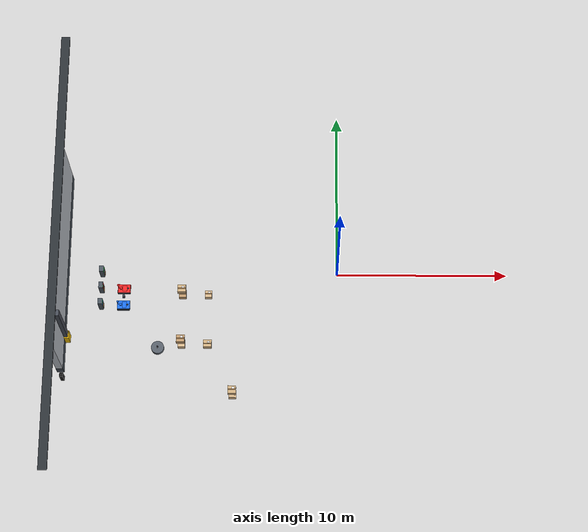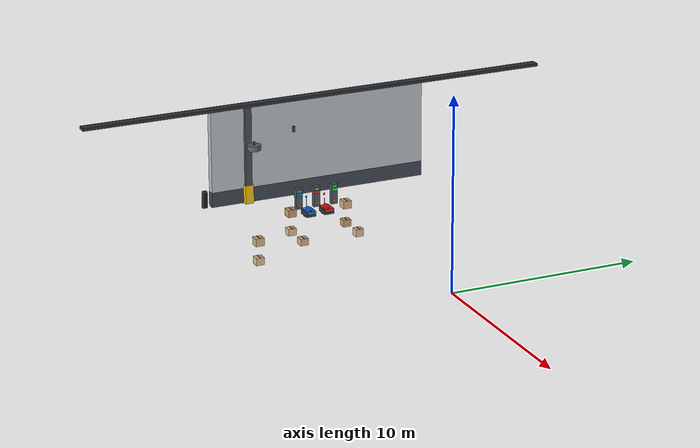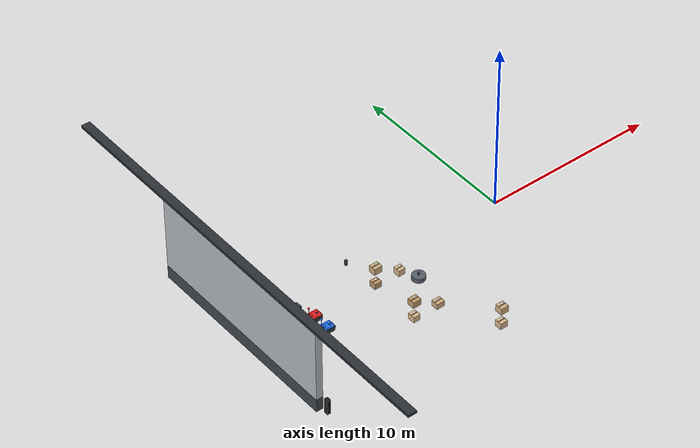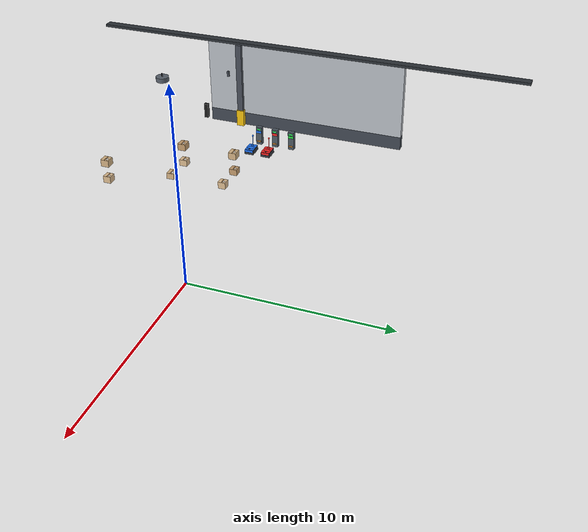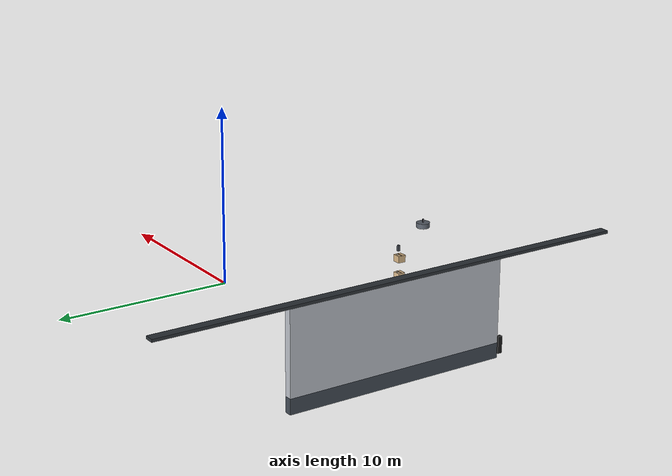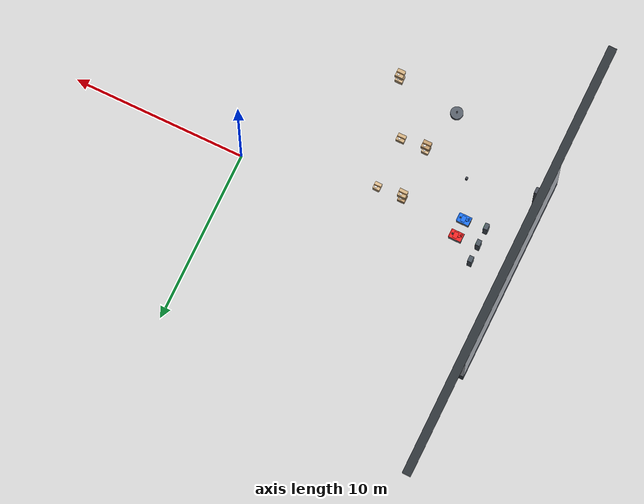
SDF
<sdf version="1.8">
 <world name="warehouse_3d">
  <model name="warehouse_architecture">
   <static>true</static>
   <link name="wall_west_mid_base">
    <pose>-16.0000 0.0000 0.4000 0.0000 0.0000 0.0000</pose>
    <collision name="wall_west_mid_base_col">
     <geometry><box><size>0.4000 12.0000 0.8000</size></box></geometry>
    </collision>
    <visual name="wall_west_mid_base_vis">
     <geometry><box><size>0.4000 12.0000 0.8000</size></box></geometry>
     <material>
      <ambient>0.163 0.182 0.208 1.00</ambient>
      <diffuse>0.250 0.280 0.320 1.00</diffuse>
      <specular>0.15 0.15 0.15 1.0</specular>
     </material>
    </visual>
   </link>
   <link name="wall_west_mid_upper">
    <pose>-16.0000 0.0000 3.0000 0.0000 0.0000 0.0000</pose>
    <collision name="wall_west_mid_upper_col">
     <geometry><box><size>0.4000 12.0000 4.4000</size></box></geometry>
    </collision>
    <visual name="wall_west_mid_upper_vis">
     <geometry><box><size>0.4000 12.0000 4.4000</size></box></geometry>
     <material>
      <ambient>0.468 0.481 0.501 1.00</ambient>
      <diffuse>0.720 0.740 0.770 1.00</diffuse>
      <specular>0.15 0.15 0.15 1.0</specular>
     </material>
    </visual>
   </link>
   <link name="wall_west_coping">
    <pose>-16.0000 0.0000 5.2500 0.0000 0.0000 0.0000</pose>
    <collision name="wall_west_coping_col">
     <geometry><box><size>0.5000 25.8000 0.1500</size></box></geometry>
    </collision>
    <visual name="wall_west_coping_vis">
     <geometry><box><size>0.5000 25.8000 0.1500</size></box></geometry>
     <material>
      <ambient>0.117 0.130 0.143 1.00</ambient>
      <diffuse>0.180 0.200 0.220 1.00</diffuse>
      <specular>0.15 0.15 0.15 1.0</specular>
     </material>
    </visual>
   </link>
   <link name="dock_bumper_out_2">
    <pose>-15.8500 -6.4000 0.5000 0.0000 0.0000 0.0000</pose>
    <collision name="dock_bumper_out_2_col">
     <geometry><box><size>0.2000 0.2500 0.9000</size></box></geometry>
    </collision>
    <visual name="dock_bumper_out_2_vis">
     <geometry><box><size>0.2000 0.2500 0.9000</size></box></geometry>
     <material>
      <ambient>0.065 0.065 0.065 1.00</ambient>
      <diffuse>0.100 0.100 0.100 1.00</diffuse>
      <specular>0.15 0.15 0.15 1.0</specular>
     </material>
    </visual>
   </link>
   <link name="col_1_base">
    <pose>-15.7500 -4.0000 0.5000 0.0000 0.0000 0.0000</pose>
    <collision name="col_1_base_col"><geometry><box><size>0.4500 0.4500 1.0000</size></box></geometry></collision>
    <visual name="col_1_base_vis">
     <geometry><box><size>0.4500 0.4500 1.0000</size></box></geometry>
     <material>
      <ambient>0.617 0.488 0.033 1.00</ambient>
      <diffuse>0.950 0.750 0.050 1.00</diffuse>
      <specular>0.15 0.15 0.15 1.0</specular>
     </material>
    </visual>
   </link>
   <link name="col_1_stem">
    <pose>-15.7500 -4.0000 3.1000 0.0000 0.0000 0.0000</pose>
    <collision name="col_1_stem_col"><geometry><box><size>0.3500 0.3500 4.2000</size></box></geometry></collision>
    <visual name="col_1_stem_vis">
     <geometry><box><size>0.3500 0.3500 4.2000</size></box></geometry>
     <material>
      <ambient>0.182 0.195 0.221 1.00</ambient>
      <diffuse>0.280 0.300 0.340 1.00</diffuse>
      <specular>0.15 0.15 0.15 1.0</specular>
     </material>
    </visual>
   </link>
   <link name="truss_web_1_0">
    <pose>-12.0000 -3.0000 5.0500 0.0000 0.0000 0.0000</pose>
    <visual name="truss_web_1_0_vis">
     <geometry><box><size>0.1200 0.1200 0.3000</size></box></geometry>
     <material>
      <ambient>0.182 0.195 0.221 1.00</ambient>
      <diffuse>0.280 0.300 0.340 1.00</diffuse>
      <specular>0.15 0.15 0.15 1.0</specular>
     </material>
    </visual>
   </link>
   <link name="fixture_bell_0">
    <pose>-10.0000 -6.0000 5.1500 0.0000 0.0000 0.0000</pose>
    <visual name="fixture_bell_0_vis">
     <geometry><cylinder><radius>0.3500</radius><length>0.2500</length></cylinder></geometry>
     <material>
      <ambient>0.227 0.247 0.273 1.00</ambient>
      <diffuse>0.350 0.380 0.420 1.00</diffuse>
      <specular>0.2 0.2 0.2 1.0</specular>
     </material>
    </visual>
   </link>
   <link name="fixture_stem_0">
    <pose>-10.0000 -6.0000 5.3500 0.0000 0.0000 0.0000</pose>
    <visual name="fixture_stem_0_vis">
     <geometry><cylinder><radius>0.0400</radius><length>0.2000</length></cylinder></geometry>
     <material>
      <ambient>0.098 0.098 0.117 1.00</ambient>
      <diffuse>0.150 0.150 0.180 1.00</diffuse>
      <specular>0.2 0.2 0.2 1.0</specular>
     </material>
    </visual>
   </link>
   <link name="fixture_lens_0">
    <pose>-10.0000 -6.0000 5.0200 0.0000 0.0000 0.0000</pose>
    <visual name="fixture_lens_0_vis">
     <geometry><cylinder><radius>0.3200</radius><length>0.0400</length></cylinder></geometry>
     <material>
      <ambient>0.617 0.637 0.650 1.00</ambient>
      <diffuse>0.950 0.980 1.000 1.00</diffuse>
      <specular>0.2 0.2 0.2 1.0</specular>
      <emissive>0.850 0.880 0.950 1.0</emissive>
     </material>
    </visual>
   </link>
  </model>
  <model name="package_P003">
   <static>true</static>
   <pose>-6.00 -7.50 0.82 0 0 0</pose>
   <link name="box_link">
    <collision name="box_col"><geometry><box><size>0.43 0.42 0.38</size></box></geometry></collision>
    <visual name="box_vis">
     <geometry><box><size>0.43 0.42 0.38</size></box></geometry>
     <material>
      <ambient>0.60 0.51 0.39 1.0</ambient>
      <diffuse>0.86 0.73 0.56 1.0</diffuse>
      <specular>0.08 0.08 0.08 1.0</specular>
     </material>
    </visual>
    <visual name="top_tape">
     <pose>0 0 0.1910 0 0 0</pose>
     <geometry><box><size>0.432 0.05 0.002</size></box></geometry>
     <material><ambient>0.48 0.35 0.20 1.0</ambient><diffuse>0.55 0.40 0.24 1.0</diffuse></material>
    </visual>
    <visual name="shipping_label">
     <pose>0.065 0.084 0.1920 0 0 0</pose>
     <geometry><box><size>0.14 0.10 0.002</size></box></geometry>
     <material><ambient>0.92 0.92 0.92 1.0</ambient><diffuse>0.98 0.98 0.98 1.0</diffuse></material>
    </visual>
   </link>
  </model>
  <model name="package_P007">
   <static>true</static>
   <pose>-6.00 -7.50 1.82 0 0 0</pose>
   <link name="box_link">
    <collision name="box_col"><geometry><box><size>0.45 0.45 0.39</size></box></geometry></collision>
    <visual name="box_vis">
     <geometry><box><size>0.45 0.45 0.39</size></box></geometry>
     <material>
      <ambient>0.57 0.48 0.36 1.0</ambient>
      <diffuse>0.82 0.69 0.51 1.0</diffuse>
      <specular>0.08 0.08 0.08 1.0</specular>
     </material>
    </visual>
    <visual name="top_tape">
     <pose>0 0 0.1960 0 0 0</pose>
     <geometry><box><size>0.452 0.05 0.002</size></box></geometry>
     <material><ambient>0.48 0.35 0.20 1.0</ambient><diffuse>0.55 0.40 0.24 1.0</diffuse></material>
    </visual>
    <visual name="shipping_label">
     <pose>0.068 0.090 0.1970 0 0 0</pose>
     <geometry><box><size>0.14 0.10 0.002</size></box></geometry>
     <material><ambient>0.92 0.92 0.92 1.0</ambient><diffuse>0.98 0.98 0.98 1.0</diffuse></material>
    </visual>
   </link>
  </model>
  <model name="package_P009">
   <static>true</static>
   <pose>-9.00 -4.50 0.82 0 0 0</pose>
   <link name="box_link">
    <collision name="box_col"><geometry><box><size>0.40 0.43 0.36</size></box></geometry></collision>
    <visual name="box_vis">
     <geometry><box><size>0.40 0.43 0.36</size></box></geometry>
     <material>
      <ambient>0.60 0.51 0.39 1.0</ambient>
      <diffuse>0.86 0.73 0.56 1.0</diffuse>
      <specular>0.08 0.08 0.08 1.0</specular>
     </material>
    </visual>
    <visual name="top_tape">
     <pose>0 0 0.1810 0 0 0</pose>
     <geometry><box><size>0.402 0.05 0.002</size></box></geometry>
     <material><ambient>0.48 0.35 0.20 1.0</ambient><diffuse>0.55 0.40 0.24 1.0</diffuse></material>
    </visual>
    <visual name="shipping_label">
     <pose>0.060 0.086 0.1820 0 0 0</pose>
     <geometry><box><size>0.14 0.10 0.002</size></box></geometry>
     <material><ambient>0.92 0.92 0.92 1.0</ambient><diffuse>0.98 0.98 0.98 1.0</diffuse></material>
    </visual>
   </link>
  </model>
  <model name="package_P010">
   <static>true</static>
   <pose>-7.50 -4.50 0.82 0 0 0</pose>
   <link name="box_link">
    <collision name="box_col"><geometry><box><size>0.47 0.42 0.34</size></box></geometry></collision>
    <visual name="box_vis">
     <geometry><box><size>0.47 0.42 0.34</size></box></geometry>
     <material>
      <ambient>0.57 0.48 0.36 1.0</ambient>
      <diffuse>0.82 0.69 0.51 1.0</diffuse>
      <specular>0.08 0.08 0.08 1.0</specular>
     </material>
    </visual>
    <visual name="top_tape">
     <pose>0 0 0.1710 0 0 0</pose>
     <geometry><box><size>0.472 0.05 0.002</size></box></geometry>
     <material><ambient>0.48 0.35 0.20 1.0</ambient><diffuse>0.55 0.40 0.24 1.0</diffuse></material>
    </visual>
    <visual name="shipping_label">
     <pose>0.070 0.084 0.1720 0 0 0</pose>
     <geometry><box><size>0.14 0.10 0.002</size></box></geometry>
     <material><ambient>0.92 0.92 0.92 1.0</ambient><diffuse>0.98 0.98 0.98 1.0</diffuse></material>
    </visual>
   </link>
  </model>
  <model name="package_P014">
   <static>true</static>
   <pose>-9.00 -4.50 1.82 0 0 0</pose>
   <link name="box_link">
    <collision name="box_col"><geometry><box><size>0.48 0.44 0.38</size></box></geometry></collision>
    <visual name="box_vis">
     <geometry><box><size>0.48 0.44 0.38</size></box></geometry>
     <material>
      <ambient>0.53 0.43 0.30 1.0</ambient>
      <diffuse>0.76 0.61 0.43 1.0</diffuse>
      <specular>0.08 0.08 0.08 1.0</specular>
     </material>
    </visual>
    <visual name="top_tape">
     <pose>0 0 0.1910 0 0 0</pose>
     <geometry><box><size>0.482 0.05 0.002</size></box></geometry>
     <material><ambient>0.48 0.35 0.20 1.0</ambient><diffuse>0.55 0.40 0.24 1.0</diffuse></material>
    </visual>
    <visual name="shipping_label">
     <pose>0.072 0.088 0.1920 0 0 0</pose>
     <geometry><box><size>0.14 0.10 0.002</size></box></geometry>
     <material><ambient>0.92 0.92 0.92 1.0</ambient><diffuse>0.98 0.98 0.98 1.0</diffuse></material>
    </visual>
   </link>
  </model>
  <model name="package_P017">
   <static>true</static>
   <pose>-9.00 -1.50 0.82 0 0 0</pose>
   <link name="box_link">
    <collision name="box_col"><geometry><box><size>0.42 0.42 0.35</size></box></geometry></collision>
    <visual name="box_vis">
     <geometry><box><size>0.42 0.42 0.35</size></box></geometry>
     <material>
      <ambient>0.53 0.43 0.30 1.0</ambient>
      <diffuse>0.76 0.61 0.43 1.0</diffuse>
      <specular>0.08 0.08 0.08 1.0</specular>
     </material>
    </visual>
    <visual name="top_tape">
     <pose>0 0 0.1760 0 0 0</pose>
     <geometry><box><size>0.422 0.05 0.002</size></box></geometry>
     <material><ambient>0.48 0.35 0.20 1.0</ambient><diffuse>0.55 0.40 0.24 1.0</diffuse></material>
    </visual>
    <visual name="shipping_label">
     <pose>0.063 0.084 0.1770 0 0 0</pose>
     <geometry><box><size>0.14 0.10 0.002</size></box></geometry>
     <material><ambient>0.92 0.92 0.92 1.0</ambient><diffuse>0.98 0.98 0.98 1.0</diffuse></material>
    </visual>
   </link>
  </model>
  <model name="package_P018">
   <static>true</static>
   <pose>-7.50 -1.50 0.82 0 0 0</pose>
   <link name="box_link">
    <collision name="box_col"><geometry><box><size>0.40 0.41 0.38</size></box></geometry></collision>
    <visual name="box_vis">
     <geometry><box><size>0.40 0.41 0.38</size></box></geometry>
     <material>
      <ambient>0.60 0.51 0.39 1.0</ambient>
      <diffuse>0.86 0.73 0.56 1.0</diffuse>
      <specular>0.08 0.08 0.08 1.0</specular>
     </material>
    </visual>
    <visual name="top_tape">
     <pose>0 0 0.1910 0 0 0</pose>
     <geometry><box><size>0.402 0.05 0.002</size></box></geometry>
     <material><ambient>0.48 0.35 0.20 1.0</ambient><diffuse>0.55 0.40 0.24 1.0</diffuse></material>
    </visual>
    <visual name="shipping_label">
     <pose>0.060 0.082 0.1920 0 0 0</pose>
     <geometry><box><size>0.14 0.10 0.002</size></box></geometry>
     <material><ambient>0.92 0.92 0.92 1.0</ambient><diffuse>0.98 0.98 0.98 1.0</diffuse></material>
    </visual>
   </link>
  </model>
  <model name="package_P022">
   <static>true</static>
   <pose>-9.00 -1.50 1.82 0 0 0</pose>
   <link name="box_link">
    <collision name="box_col"><geometry><box><size>0.48 0.42 0.39</size></box></geometry></collision>
    <visual name="box_vis">
     <geometry><box><size>0.48 0.42 0.39</size></box></geometry>
     <material>
      <ambient>0.57 0.48 0.36 1.0</ambient>
      <diffuse>0.82 0.69 0.51 1.0</diffuse>
      <specular>0.08 0.08 0.08 1.0</specular>
     </material>
    </visual>
    <visual name="top_tape">
     <pose>0 0 0.1960 0 0 0</pose>
     <geometry><box><size>0.482 0.05 0.002</size></box></geometry>
     <material><ambient>0.48 0.35 0.20 1.0</ambient><diffuse>0.55 0.40 0.24 1.0</diffuse></material>
    </visual>
    <visual name="shipping_label">
     <pose>0.072 0.084 0.1970 0 0 0</pose>
     <geometry><box><size>0.14 0.10 0.002</size></box></geometry>
     <material><ambient>0.92 0.92 0.92 1.0</ambient><diffuse>0.98 0.98 0.98 1.0</diffuse></material>
    </visual>
   </link>
  </model>
  <model name="charging_bay_alpha">
   <static>true</static>
   <pose>-13.80 -2.00 0.0 0 0 0</pose>
   <link name="terminal_housing">
    <pose>0 0 0.55 0 0 0</pose>
    <collision name="pylon_col"><geometry><box><size>0.25 0.35 1.1</size></box></geometry></collision>
    <visual name="pylon_vis">
     <geometry><box><size>0.25 0.35 1.1</size></box></geometry>
     <material><ambient>0.22 0.25 0.28 1.0</ambient><diffuse>0.30 0.34 0.38 1.0</diffuse></material>
    </visual>
    <visual name="color_accent">
     <pose>0.13 0 0.25 0 0 0</pose>
     <geometry><box><size>0.01 0.33 0.15</size></box></geometry>
     <material><ambient>0.08 0.32 0.66 1.0</ambient><diffuse>0.12 0.45 0.95 1.0</diffuse></material>
    </visual>
    <visual name="status_led">
     <pose>0.13 0 0.42 0 0 0</pose>
     <geometry><box><size>0.01 0.22 0.10</size></box></geometry>
     <material>
      <ambient>0.1 0.8 0.3 1.0</ambient>
      <diffuse>0.2 0.95 0.4 1.0</diffuse>
      <emissive>0.2 0.9 0.3 1.0</emissive>
     </material>
    </visual>
    <visual name="charge_contact">
     <pose>0.135 0 -0.35 0 0 0</pose>
     <geometry><box><size>0.02 0.24 0.08</size></box></geometry>
     <material><ambient>0.75 0.45 0.15 1.0</ambient><diffuse>0.85 0.55 0.20 1.0</diffuse></material>
    </visual>
   </link>
  </model>
  <model name="charging_bay_beta">
   <static>true</static>
   <pose>-13.80 -1.00 0.0 0 0 0</pose>
   <link name="terminal_housing">
    <pose>0 0 0.55 0 0 0</pose>
    <collision name="pylon_col"><geometry><box><size>0.25 0.35 1.1</size></box></geometry></collision>
    <visual name="pylon_vis">
     <geometry><box><size>0.25 0.35 1.1</size></box></geometry>
     <material><ambient>0.22 0.25 0.28 1.0</ambient><diffuse>0.30 0.34 0.38 1.0</diffuse></material>
    </visual>
    <visual name="color_accent">
     <pose>0.13 0 0.25 0 0 0</pose>
     <geometry><box><size>0.01 0.33 0.15</size></box></geometry>
     <material><ambient>0.66 0.10 0.10 1.0</ambient><diffuse>0.95 0.15 0.15 1.0</diffuse></material>
    </visual>
    <visual name="status_led">
     <pose>0.13 0 0.42 0 0 0</pose>
     <geometry><box><size>0.01 0.22 0.10</size></box></geometry>
     <material>
      <ambient>0.1 0.8 0.3 1.0</ambient>
      <diffuse>0.2 0.95 0.4 1.0</diffuse>
      <emissive>0.2 0.9 0.3 1.0</emissive>
     </material>
    </visual>
    <visual name="charge_contact">
     <pose>0.135 0 -0.35 0 0 0</pose>
     <geometry><box><size>0.02 0.24 0.08</size></box></geometry>
     <material><ambient>0.75 0.45 0.15 1.0</ambient><diffuse>0.85 0.55 0.20 1.0</diffuse></material>
    </visual>
   </link>
  </model>
  <model name="charging_bay_gamma">
   <static>true</static>
   <pose>-13.80 0.00 0.0 0 0 0</pose>
   <link name="terminal_housing">
    <pose>0 0 0.55 0 0 0</pose>
    <collision name="pylon_col"><geometry><box><size>0.25 0.35 1.1</size></box></geometry></collision>
    <visual name="pylon_vis">
     <geometry><box><size>0.25 0.35 1.1</size></box></geometry>
     <material><ambient>0.22 0.25 0.28 1.0</ambient><diffuse>0.30 0.34 0.38 1.0</diffuse></material>
    </visual>
    <visual name="color_accent">
     <pose>0.13 0 0.25 0 0 0</pose>
     <geometry><box><size>0.01 0.33 0.15</size></box></geometry>
     <material><ambient>0.10 0.59 0.17 1.0</ambient><diffuse>0.15 0.85 0.25 1.0</diffuse></material>
    </visual>
    <visual name="status_led">
     <pose>0.13 0 0.42 0 0 0</pose>
     <geometry><box><size>0.01 0.22 0.10</size></box></geometry>
     <material>
      <ambient>0.1 0.8 0.3 1.0</ambient>
      <diffuse>0.2 0.95 0.4 1.0</diffuse>
      <emissive>0.2 0.9 0.3 1.0</emissive>
     </material>
    </visual>
    <visual name="charge_contact">
     <pose>0.135 0 -0.35 0 0 0</pose>
     <geometry><box><size>0.02 0.24 0.08</size></box></geometry>
     <material><ambient>0.75 0.45 0.15 1.0</ambient><diffuse>0.85 0.55 0.20 1.0</diffuse></material>
    </visual>
   </link>
  </model>
  <model name="amr_robot_alpha">
   <pose>-12.5 -2.0 0.05 0 0 0.0</pose>
   <link name="robot_alpha/base_footprint">
    <inertial>
     <pose>0.003956442831215972 0 0.17635208711433761 0 0 0</pose>
     <mass>27.550000000000001</mass>
     <inertia>
      <ixx>0.50626838475499114</ixx>
      <ixy>0</ixy>
      <ixz>-0.012657622504537201</ixz>
      <iyy>0.86224713248638873</iyy>
      <iyz>0</iyz>
      <izz>1.012238747731397</izz>
     </inertia>
    </inertial>
    <collision name="robot_alpha/base_footprint_fixed_joint_lump__robot_alpha/base_link_collision">
     <pose>0 0 0.17999999999999999 0 0 0</pose>
     <geometry><box><size>0.71999999999999997 0.52000000000000002 0.26000000000000001</size></box></geometry>
    </collision>
    <collision name="robot_alpha/base_footprint_fixed_joint_lump__robot_alpha/front_caster_link_collision_1">
     <pose>0.28000000000000003 0 0.040000000000000001 0 0 0</pose>
     <geometry><sphere><radius>0.040000000000000001</radius></sphere></geometry>
    </collision>
    <collision name="robot_alpha/base_footprint_fixed_joint_lump__robot_alpha/lidar_link_collision_2">
     <pose>0.23999999999999999 0 0.34000000000000002 0 0 0</pose>
     <geometry>
      <cylinder><length>0.059999999999999998</length><radius>0.050000000000000003</radius></cylinder>
     </geometry>
    </collision>
    <collision name="robot_alpha/base_footprint_fixed_joint_lump__robot_alpha/rear_caster_link_collision_3">
     <pose>-0.28000000000000003 0 0.040000000000000001 0 0 0</pose>
     <geometry><sphere><radius>0.040000000000000001</radius></sphere></geometry>
    </collision>
    <visual name="robot_alpha/base_footprint_fixed_joint_lump__robot_alpha/base_link_visual">
     <pose>0 0 0.17999999999999999 0 0 0</pose>
     <geometry><box><size>0.71999999999999997 0.52000000000000002 0.26000000000000001</size></box></geometry>
     <material>
      <diffuse>0.200000003 0.219999999 0.25 1</diffuse>
      <ambient>0.150000006 0.180000007 0.200000003 1</ambient>
     </material>
    </visual>
    <visual name="robot_alpha/base_footprint_fixed_joint_lump__robot_alpha/camera_link_visual_1">
     <pose>0.37 0 0.20000000000000001 0 0 0</pose>
     <geometry><box><size>0.029999999999999999 0.080000000000000002 0.029999999999999999</size></box></geometry>
     <material>
      <diffuse>0.187500015 0.187500015 0.187500015 1</diffuse>
      <ambient>0.187500015 0.187500015 0.187500015 1</ambient>
     </material>
    </visual>
    <visual name="robot_alpha/base_footprint_fixed_joint_lump__robot_alpha/front_caster_link_visual_2">
     <pose>0.28000000000000003 0 0.040000000000000001 0 0 0</pose>
     <geometry><sphere><radius>0.040000000000000001</radius></sphere></geometry>
     <material><diffuse>0.125 0.125 0.125 1</diffuse><ambient>0.125 0.125 0.125 1</ambient></material>
    </visual>
    <visual name="robot_alpha/base_footprint_fixed_joint_lump__robot_alpha/lidar_link_visual_3">
     <pose>0.23999999999999999 0 0.34000000000000002 0 0 0</pose>
     <geometry>
      <cylinder><length>0.059999999999999998</length><radius>0.050000000000000003</radius></cylinder>
     </geometry>
     <material>
      <diffuse>0.187500015 0.187500015 0.187500015 1</diffuse>
      <ambient>0.187500015 0.187500015 0.187500015 1</ambient>
     </material>
    </visual>
    <visual name="robot_alpha/base_footprint_fixed_joint_lump__robot_alpha/rear_caster_link_visual_4">
     <pose>-0.28000000000000003 0 0.040000000000000001 0 0 0</pose>
     <geometry><sphere><radius>0.040000000000000001</radius></sphere></geometry>
     <material><diffuse>0.125 0.125 0.125 1</diffuse><ambient>0.125 0.125 0.125 1</ambient></material>
    </visual>
    <visual name="robot_alpha/base_footprint_fixed_joint_lump__robot_alpha/shell_link_visual_5">
     <pose>0 0 0.33000000000000002 0 0 0</pose>
     <geometry><box><size>0.69999999999999996 0.5 0.040000000000000001</size></box></geometry>
     <material>
      <diffuse>0.119999997 0.449999988 0.949999988 1</diffuse>
      <ambient>0.100000001 0.349999994 0.850000024 1</ambient>
      <specular>0.600000024 0.600000024 0.600000024 1</specular>
      <emissive>0.0799999982 0.200000003 0.449999988 1</emissive>
     </material>
    </visual>
    <visual name="robot_alpha/base_footprint_fixed_joint_lump__robot_alpha/shell_link_visual_6">
     <pose>0.35999999999999999 0 0.27000000000000002 0 0 0</pose>
     <geometry><box><size>0.059999999999999998 0.47999999999999998 0.14000000000000001</size></box></geometry>
     <material>
      <diffuse>0.119999997 0.449999988 0.949999988 1</diffuse>
      <ambient>0.100000001 0.349999994 0.850000024 1</ambient>
      <specular>0.600000024 0.600000024 0.600000024 1</specular>
      <emissive>0.0799999982 0.200000003 0.449999988 1</emissive>
     </material>
    </visual>
    <visual name="robot_alpha/base_footprint_fixed_joint_lump__robot_alpha/shell_link_visual_7">
     <pose>-0.14999999999999999 0 0.40000000000000002 0 0 0</pose>
     <geometry>
      <cylinder><length>0.10000000000000001</length><radius>0.070000000000000007</radius></cylinder>
     </geometry>
     <material>
      <diffuse>0.119999997 0.449999988 0.949999988 1</diffuse>
      <ambient>0.100000001 0.349999994 0.850000024 1</ambient>
      <specular>0.600000024 0.600000024 0.600000024 1</specular>
      <emissive>0.0799999982 0.200000003 0.449999988 1</emissive>
     </material>
    </visual>
    <visual name="robot_alpha/base_footprint_fixed_joint_lump__robot_alpha/shell_link_visual_8">
     <pose>-0.28000000000000003 0 0.65000000000000002 0 0 0</pose>
     <geometry><cylinder><length>0.59999999999999998</length><radius>0.012</radius></cylinder></geometry>
     <material>
      <diffuse>0.119999997 0.449999988 0.949999988 1</diffuse>
      <ambient>0.100000001 0.349999994 0.850000024 1</ambient>
      <specular>0.600000024 0.600000024 0.600000024 1</specular>
      <emissive>0.0799999982 0.200000003 0.449999988 1</emissive>
     </material>
    </visual>
    <visual name="robot_alpha/base_footprint_fixed_joint_lump__robot_alpha/shell_link_visual_9">
     <pose>-0.28000000000000003 0 0.94999999999999996 0 0 0</pose>
     <geometry><sphere><radius>0.055</radius></sphere></geometry>
     <material>
      <diffuse>0.119999997 0.449999988 0.949999988 1</diffuse>
      <ambient>0.100000001 0.349999994 0.850000024 1</ambient>
      <specular>0.600000024 0.600000024 0.600000024 1</specular>
      <emissive>0.0799999982 0.200000003 0.449999988 1</emissive>
     </material>
    </visual>
    <visual name="robot_alpha/base_footprint_fixed_joint_lump__robot_alpha/shell_link_visual_10">
     <pose>0.050000000000000003 0 0.35199999999999998 0 0 0</pose>
     <geometry><box><size>0.25 0.34999999999999998 0.01</size></box></geometry>
     <material>
      <diffuse>0.119999997 0.449999988 0.949999988 1</diffuse>
      <ambient>0.100000001 0.349999994 0.850000024 1</ambient>
      <specular>0.600000024 0.600000024 0.600000024 1</specular>
      <emissive>0.0799999982 0.200000003 0.449999988 1</emissive>
     </material>
    </visual>
    <sensor name="camera" type="camera">
     <pose relative_to="robot_alpha/camera_link">0 0 0 0 0 0</pose>
     <topic>robot_alpha/camera/image_raw</topic>
     <update_rate>15</update_rate>
     <camera>
      <horizontal_fov>1.3962634</horizontal_fov>
      <image><width>640</width><height>480</height><format>R8G8B8</format></image>
      <clip><near>0.10000000000000001</near><far>20</far></clip>
     </camera>
     <always_on>true</always_on>
     <visualize>true</visualize>
    </sensor>
    <sensor name="imu" type="imu">
     <pose relative_to="robot_alpha/imu_link">0 0 0 0 0 0</pose>
     <topic>robot_alpha/imu</topic>
     <update_rate>50</update_rate>
     <always_on>true</always_on>
     <visualize>false</visualize>
    </sensor>
    <sensor name="lidar" type="gpu_lidar">
     <pose relative_to="robot_alpha/lidar_link">0 0 0 0 0 0</pose>
     <topic>robot_alpha/scan</topic>
     <update_rate>15</update_rate>
     <ray>
      <scan>
       <horizontal>
        <samples>360</samples>
        <resolution>1</resolution>
        <min_angle>-3.1415899999999999</min_angle>
        <max_angle>3.1415899999999999</max_angle>
       </horizontal>
      </scan>
      <range><min>0.14999999999999999</min><max>16</max><resolution>0.01</resolution></range>
     </ray>
     <always_on>true</always_on>
     <visualize>true</visualize>
    </sensor>
   </link>
   <joint name="robot_alpha/left_wheel_joint" type="revolute">
    <pose relative_to="robot_alpha/base_footprint">0 0.23000000000000001 0.10000000000000001 0 0 0</pose>
    <parent>robot_alpha/base_footprint</parent>
    <child>robot_alpha/left_wheel_link</child>
    <axis>
     <xyz>0 1 0</xyz>
     <limit><lower>-inf</lower><upper>inf</upper></limit>
     <dynamics><spring_reference>0</spring_reference><spring_stiffness>0</spring_stiffness></dynamics>
    </axis>
   </joint>
   <link name="robot_alpha/left_wheel_link">
    <pose relative_to="robot_alpha/left_wheel_joint">0 0 0 0 0 0</pose>
    <inertial>
     <mass>2.5</mass>
     <inertia>
      <ixx>0.0070000000000000001</ixx>
      <ixy>0</ixy>
      <ixz>0</ixz>
      <iyy>0.0070000000000000001</iyy>
      <iyz>0</iyz>
      <izz>0.012500000000000001</izz>
     </inertia>
    </inertial>
    <collision name="robot_alpha/left_wheel_link_collision">
     <pose>0 0 0 1.5707963267948959 0 0</pose>
     <geometry>
      <cylinder><length>0.050000000000000003</length><radius>0.10000000000000001</radius></cylinder>
     </geometry>
    </collision>
    <visual name="robot_alpha/left_wheel_link_visual">
     <pose>0 0 0 1.5707963267948959 0 0</pose>
     <geometry>
      <cylinder><length>0.050000000000000003</length><radius>0.10000000000000001</radius></cylinder>
     </geometry>
     <material><diffuse>0.125 0.125 0.125 1</diffuse><ambient>0.125 0.125 0.125 1</ambient></material>
    </visual>
   </link>
   <joint name="robot_alpha/right_wheel_joint" type="revolute">
    <pose relative_to="robot_alpha/base_footprint">0 -0.23000000000000001 0.10000000000000001 0 0 0</pose>
    <parent>robot_alpha/base_footprint</parent>
    <child>robot_alpha/right_wheel_link</child>
    <axis>
     <xyz>0 1 0</xyz>
     <limit><lower>-inf</lower><upper>inf</upper></limit>
     <dynamics><spring_reference>0</spring_reference><spring_stiffness>0</spring_stiffness></dynamics>
    </axis>
   </joint>
   <link name="robot_alpha/right_wheel_link">
    <pose relative_to="robot_alpha/right_wheel_joint">0 0 0 0 0 0</pose>
    <inertial>
     <mass>2.5</mass>
     <inertia>
      <ixx>0.0070000000000000001</ixx>
      <ixy>0</ixy>
      <ixz>0</ixz>
      <iyy>0.0070000000000000001</iyy>
      <iyz>0</iyz>
      <izz>0.012500000000000001</izz>
     </inertia>
    </inertial>
    <collision name="robot_alpha/right_wheel_link_collision">
     <pose>0 0 0 1.5707963267948959 0 0</pose>
     <geometry>
      <cylinder><length>0.050000000000000003</length><radius>0.10000000000000001</radius></cylinder>
     </geometry>
    </collision>
    <visual name="robot_alpha/right_wheel_link_visual">
     <pose>0 0 0 1.5707963267948959 0 0</pose>
     <geometry>
      <cylinder><length>0.050000000000000003</length><radius>0.10000000000000001</radius></cylinder>
     </geometry>
     <material><diffuse>0.125 0.125 0.125 1</diffuse><ambient>0.125 0.125 0.125 1</ambient></material>
    </visual>
   </link>
   <plugin name="gz::sim::systems::DiffDrive" filename="gz-sim-diff-drive-system">
    <left_joint>robot_alpha/left_wheel_joint</left_joint>
    <right_joint>robot_alpha/right_wheel_joint</right_joint>
    <wheel_separation>0.46</wheel_separation>
    <wheel_radius>0.1</wheel_radius>
    <max_linear_acceleration>1.5</max_linear_acceleration>
    <min_linear_acceleration>-1.5</min_linear_acceleration>
    <max_angular_acceleration>2.0</max_angular_acceleration>
    <min_angular_acceleration>-2.0</min_angular_acceleration>
    <max_linear_velocity>3.0</max_linear_velocity>
    <min_linear_velocity>-3.0</min_linear_velocity>
    <max_angular_velocity>2.5</max_angular_velocity>
    <min_angular_velocity>-2.5</min_angular_velocity>
    <topic>robot_alpha/cmd_vel</topic>
    <odom_topic>robot_alpha/odom</odom_topic>
    <tf_topic>robot_alpha/tf</tf_topic>
    <frame_id>robot_alpha/odom</frame_id>
    <child_frame_id>robot_alpha/base_footprint</child_frame_id>
    <odom_publisher_frequency>30</odom_publisher_frequency>
   </plugin>
   <plugin name="gz::sim::systems::JointStatePublisher" filename="gz-sim-joint-state-publisher-system">
    <topic>robot_alpha/joint_states</topic>
    <joint_name>robot_alpha/left_wheel_joint</joint_name>
    <joint_name>robot_alpha/right_wheel_joint</joint_name>
   </plugin>
   <frame name="robot_alpha/camera_joint" attached_to="robot_alpha/base_link">
    <pose>0.37 0 0.10000000000000001 0 0 0</pose>
   </frame>
   <frame name="robot_alpha/camera_link" attached_to="robot_alpha/camera_joint"/>
   <frame name="robot_alpha/front_caster_joint" attached_to="robot_alpha/base_link">
    <pose>0.28000000000000003 0 -0.059999999999999998 0 0 0</pose>
   </frame>
   <frame name="robot_alpha/front_caster_link" attached_to="robot_alpha/front_caster_joint"/>
   <frame name="robot_alpha/imu_joint" attached_to="robot_alpha/base_link">
    <pose>0 0 0.050000000000000003 0 0 0</pose>
   </frame>
   <frame name="robot_alpha/imu_link" attached_to="robot_alpha/imu_joint"/>
   <frame name="robot_alpha/lidar_joint" attached_to="robot_alpha/base_link">
    <pose>0.23999999999999999 0 0.23999999999999999 0 0 0</pose>
   </frame>
   <frame name="robot_alpha/lidar_link" attached_to="robot_alpha/lidar_joint"/>
   <frame name="robot_alpha/rear_caster_joint" attached_to="robot_alpha/base_link">
    <pose>-0.28000000000000003 0 -0.059999999999999998 0 0 0</pose>
   </frame>
   <frame name="robot_alpha/rear_caster_link" attached_to="robot_alpha/rear_caster_joint"/>
   <frame name="robot_alpha/shell_joint" attached_to="robot_alpha/base_link">
    <pose>0 0 0.23000000000000001 0 0 0</pose>
   </frame>
   <frame name="robot_alpha/shell_link" attached_to="robot_alpha/shell_joint"/>
   <frame name="robot_alpha/base_joint" attached_to="robot_alpha/base_footprint">
    <pose>0 0 0.10000000000000001 0 0 0</pose>
   </frame>
   <frame name="robot_alpha/base_link" attached_to="robot_alpha/base_joint"/>
  </model>
  <model name="amr_robot_beta">
   <pose>-12.5 -1.0 0.05 0 0 0.0</pose>
   <link name="robot_beta/base_footprint">
    <inertial>
     <pose>0.003956442831215972 0 0.17635208711433761 0 0 0</pose>
     <mass>27.550000000000001</mass>
     <inertia>
      <ixx>0.50626838475499114</ixx>
      <ixy>0</ixy>
      <ixz>-0.012657622504537201</ixz>
      <iyy>0.86224713248638873</iyy>
      <iyz>0</iyz>
      <izz>1.012238747731397</izz>
     </inertia>
    </inertial>
    <collision name="robot_beta/base_footprint_fixed_joint_lump__robot_beta/base_link_collision">
     <pose>0 0 0.17999999999999999 0 0 0</pose>
     <geometry><box><size>0.71999999999999997 0.52000000000000002 0.26000000000000001</size></box></geometry>
    </collision>
    <collision name="robot_beta/base_footprint_fixed_joint_lump__robot_beta/front_caster_link_collision_1">
     <pose>0.28000000000000003 0 0.040000000000000001 0 0 0</pose>
     <geometry><sphere><radius>0.040000000000000001</radius></sphere></geometry>
    </collision>
    <collision name="robot_beta/base_footprint_fixed_joint_lump__robot_beta/lidar_link_collision_2">
     <pose>0.23999999999999999 0 0.34000000000000002 0 0 0</pose>
     <geometry>
      <cylinder><length>0.059999999999999998</length><radius>0.050000000000000003</radius></cylinder>
     </geometry>
    </collision>
    <collision name="robot_beta/base_footprint_fixed_joint_lump__robot_beta/rear_caster_link_collision_3">
     <pose>-0.28000000000000003 0 0.040000000000000001 0 0 0</pose>
     <geometry><sphere><radius>0.040000000000000001</radius></sphere></geometry>
    </collision>
    <visual name="robot_beta/base_footprint_fixed_joint_lump__robot_beta/base_link_visual">
     <pose>0 0 0.17999999999999999 0 0 0</pose>
     <geometry><box><size>0.71999999999999997 0.52000000000000002 0.26000000000000001</size></box></geometry>
     <material>
      <diffuse>0.200000003 0.219999999 0.25 1</diffuse>
      <ambient>0.150000006 0.180000007 0.200000003 1</ambient>
     </material>
    </visual>
    <visual name="robot_beta/base_footprint_fixed_joint_lump__robot_beta/camera_link_visual_1">
     <pose>0.37 0 0.20000000000000001 0 0 0</pose>
     <geometry><box><size>0.029999999999999999 0.080000000000000002 0.029999999999999999</size></box></geometry>
     <material>
      <diffuse>0.187500015 0.187500015 0.187500015 1</diffuse>
      <ambient>0.187500015 0.187500015 0.187500015 1</ambient>
     </material>
    </visual>
    <visual name="robot_beta/base_footprint_fixed_joint_lump__robot_beta/front_caster_link_visual_2">
     <pose>0.28000000000000003 0 0.040000000000000001 0 0 0</pose>
     <geometry><sphere><radius>0.040000000000000001</radius></sphere></geometry>
     <material><diffuse>0.125 0.125 0.125 1</diffuse><ambient>0.125 0.125 0.125 1</ambient></material>
    </visual>
    <visual name="robot_beta/base_footprint_fixed_joint_lump__robot_beta/lidar_link_visual_3">
     <pose>0.23999999999999999 0 0.34000000000000002 0 0 0</pose>
     <geometry>
      <cylinder><length>0.059999999999999998</length><radius>0.050000000000000003</radius></cylinder>
     </geometry>
     <material>
      <diffuse>0.187500015 0.187500015 0.187500015 1</diffuse>
      <ambient>0.187500015 0.187500015 0.187500015 1</ambient>
     </material>
    </visual>
    <visual name="robot_beta/base_footprint_fixed_joint_lump__robot_beta/rear_caster_link_visual_4">
     <pose>-0.28000000000000003 0 0.040000000000000001 0 0 0</pose>
     <geometry><sphere><radius>0.040000000000000001</radius></sphere></geometry>
     <material><diffuse>0.125 0.125 0.125 1</diffuse><ambient>0.125 0.125 0.125 1</ambient></material>
    </visual>
    <visual name="robot_beta/base_footprint_fixed_joint_lump__robot_beta/shell_link_visual_5">
     <pose>0 0 0.33000000000000002 0 0 0</pose>
     <geometry><box><size>0.69999999999999996 0.5 0.040000000000000001</size></box></geometry>
     <material>
      <diffuse>0.949999988 0.150000006 0.150000006 1</diffuse>
      <ambient>0.850000024 0.100000001 0.100000001 1</ambient>
      <specular>0.600000024 0.600000024 0.600000024 1</specular>
      <emissive>0.449999988 0.0799999982 0.0799999982 1</emissive>
     </material>
    </visual>
    <visual name="robot_beta/base_footprint_fixed_joint_lump__robot_beta/shell_link_visual_6">
     <pose>0.35999999999999999 0 0.27000000000000002 0 0 0</pose>
     <geometry><box><size>0.059999999999999998 0.47999999999999998 0.14000000000000001</size></box></geometry>
     <material>
      <diffuse>0.949999988 0.150000006 0.150000006 1</diffuse>
      <ambient>0.850000024 0.100000001 0.100000001 1</ambient>
      <specular>0.600000024 0.600000024 0.600000024 1</specular>
      <emissive>0.449999988 0.0799999982 0.0799999982 1</emissive>
     </material>
    </visual>
    <visual name="robot_beta/base_footprint_fixed_joint_lump__robot_beta/shell_link_visual_7">
     <pose>-0.14999999999999999 0 0.40000000000000002 0 0 0</pose>
     <geometry>
      <cylinder><length>0.10000000000000001</length><radius>0.070000000000000007</radius></cylinder>
     </geometry>
     <material>
      <diffuse>0.949999988 0.150000006 0.150000006 1</diffuse>
      <ambient>0.850000024 0.100000001 0.100000001 1</ambient>
      <specular>0.600000024 0.600000024 0.600000024 1</specular>
      <emissive>0.449999988 0.0799999982 0.0799999982 1</emissive>
     </material>
    </visual>
    <visual name="robot_beta/base_footprint_fixed_joint_lump__robot_beta/shell_link_visual_8">
     <pose>-0.28000000000000003 0 0.65000000000000002 0 0 0</pose>
     <geometry><cylinder><length>0.59999999999999998</length><radius>0.012</radius></cylinder></geometry>
     <material>
      <diffuse>0.949999988 0.150000006 0.150000006 1</diffuse>
      <ambient>0.850000024 0.100000001 0.100000001 1</ambient>
      <specular>0.600000024 0.600000024 0.600000024 1</specular>
      <emissive>0.449999988 0.0799999982 0.0799999982 1</emissive>
     </material>
    </visual>
    <visual name="robot_beta/base_footprint_fixed_joint_lump__robot_beta/shell_link_visual_9">
     <pose>-0.28000000000000003 0 0.94999999999999996 0 0 0</pose>
     <geometry><sphere><radius>0.055</radius></sphere></geometry>
     <material>
      <diffuse>0.949999988 0.150000006 0.150000006 1</diffuse>
      <ambient>0.850000024 0.100000001 0.100000001 1</ambient>
      <specular>0.600000024 0.600000024 0.600000024 1</specular>
      <emissive>0.449999988 0.0799999982 0.0799999982 1</emissive>
     </material>
    </visual>
    <visual name="robot_beta/base_footprint_fixed_joint_lump__robot_beta/shell_link_visual_10">
     <pose>0.050000000000000003 0 0.35199999999999998 0 0 0</pose>
     <geometry><box><size>0.25 0.34999999999999998 0.01</size></box></geometry>
     <material>
      <diffuse>0.949999988 0.150000006 0.150000006 1</diffuse>
      <ambient>0.850000024 0.100000001 0.100000001 1</ambient>
      <specular>0.600000024 0.600000024 0.600000024 1</specular>
      <emissive>0.449999988 0.0799999982 0.0799999982 1</emissive>
     </material>
    </visual>
    <sensor name="camera" type="camera">
     <pose relative_to="robot_beta/camera_link">0 0 0 0 0 0</pose>
     <topic>robot_beta/camera/image_raw</topic>
     <update_rate>15</update_rate>
     <camera>
      <horizontal_fov>1.3962634</horizontal_fov>
      <image><width>640</width><height>480</height><format>R8G8B8</format></image>
      <clip><near>0.10000000000000001</near><far>20</far></clip>
     </camera>
     <always_on>true</always_on>
     <visualize>true</visualize>
    </sensor>
    <sensor name="imu" type="imu">
     <pose relative_to="robot_beta/imu_link">0 0 0 0 0 0</pose>
     <topic>robot_beta/imu</topic>
     <update_rate>50</update_rate>
     <always_on>true</always_on>
     <visualize>false</visualize>
    </sensor>
    <sensor name="lidar" type="gpu_lidar">
     <pose relative_to="robot_beta/lidar_link">0 0 0 0 0 0</pose>
     <topic>robot_beta/scan</topic>
     <update_rate>15</update_rate>
     <ray>
      <scan>
       <horizontal>
        <samples>360</samples>
        <resolution>1</resolution>
        <min_angle>-3.1415899999999999</min_angle>
        <max_angle>3.1415899999999999</max_angle>
       </horizontal>
      </scan>
      <range><min>0.14999999999999999</min><max>16</max><resolution>0.01</resolution></range>
     </ray>
     <always_on>true</always_on>
     <visualize>true</visualize>
    </sensor>
   </link>
   <joint name="robot_beta/left_wheel_joint" type="revolute">
    <pose relative_to="robot_beta/base_footprint">0 0.23000000000000001 0.10000000000000001 0 0 0</pose>
    <parent>robot_beta/base_footprint</parent>
    <child>robot_beta/left_wheel_link</child>
    <axis>
     <xyz>0 1 0</xyz>
     <limit><lower>-inf</lower><upper>inf</upper></limit>
     <dynamics><spring_reference>0</spring_reference><spring_stiffness>0</spring_stiffness></dynamics>
    </axis>
   </joint>
   <link name="robot_beta/left_wheel_link">
    <pose relative_to="robot_beta/left_wheel_joint">0 0 0 0 0 0</pose>
    <inertial>
     <mass>2.5</mass>
     <inertia>
      <ixx>0.0070000000000000001</ixx>
      <ixy>0</ixy>
      <ixz>0</ixz>
      <iyy>0.0070000000000000001</iyy>
      <iyz>0</iyz>
      <izz>0.012500000000000001</izz>
     </inertia>
    </inertial>
    <collision name="robot_beta/left_wheel_link_collision">
     <pose>0 0 0 1.5707963267948959 0 0</pose>
     <geometry>
      <cylinder><length>0.050000000000000003</length><radius>0.10000000000000001</radius></cylinder>
     </geometry>
    </collision>
    <visual name="robot_beta/left_wheel_link_visual">
     <pose>0 0 0 1.5707963267948959 0 0</pose>
     <geometry>
      <cylinder><length>0.050000000000000003</length><radius>0.10000000000000001</radius></cylinder>
     </geometry>
     <material><diffuse>0.125 0.125 0.125 1</diffuse><ambient>0.125 0.125 0.125 1</ambient></material>
    </visual>
   </link>
   <joint name="robot_beta/right_wheel_joint" type="revolute">
    <pose relative_to="robot_beta/base_footprint">0 -0.23000000000000001 0.10000000000000001 0 0 0</pose>
    <parent>robot_beta/base_footprint</parent>
    <child>robot_beta/right_wheel_link</child>
    <axis>
     <xyz>0 1 0</xyz>
     <limit><lower>-inf</lower><upper>inf</upper></limit>
     <dynamics><spring_reference>0</spring_reference><spring_stiffness>0</spring_stiffness></dynamics>
    </axis>
   </joint>
   <link name="robot_beta/right_wheel_link">
    <pose relative_to="robot_beta/right_wheel_joint">0 0 0 0 0 0</pose>
    <inertial>
     <mass>2.5</mass>
     <inertia>
      <ixx>0.0070000000000000001</ixx>
      <ixy>0</ixy>
      <ixz>0</ixz>
      <iyy>0.0070000000000000001</iyy>
      <iyz>0</iyz>
      <izz>0.012500000000000001</izz>
     </inertia>
    </inertial>
    <collision name="robot_beta/right_wheel_link_collision">
     <pose>0 0 0 1.5707963267948959 0 0</pose>
     <geometry>
      <cylinder><length>0.050000000000000003</length><radius>0.10000000000000001</radius></cylinder>
     </geometry>
    </collision>
    <visual name="robot_beta/right_wheel_link_visual">
     <pose>0 0 0 1.5707963267948959 0 0</pose>
     <geometry>
      <cylinder><length>0.050000000000000003</length><radius>0.10000000000000001</radius></cylinder>
     </geometry>
     <material><diffuse>0.125 0.125 0.125 1</diffuse><ambient>0.125 0.125 0.125 1</ambient></material>
    </visual>
   </link>
   <plugin name="gz::sim::systems::DiffDrive" filename="gz-sim-diff-drive-system">
    <left_joint>robot_beta/left_wheel_joint</left_joint>
    <right_joint>robot_beta/right_wheel_joint</right_joint>
    <wheel_separation>0.46</wheel_separation>
    <wheel_radius>0.1</wheel_radius>
    <max_linear_acceleration>1.5</max_linear_acceleration>
    <min_linear_acceleration>-1.5</min_linear_acceleration>
    <max_angular_acceleration>2.0</max_angular_acceleration>
    <min_angular_acceleration>-2.0</min_angular_acceleration>
    <max_linear_velocity>3.0</max_linear_velocity>
    <min_linear_velocity>-3.0</min_linear_velocity>
    <max_angular_velocity>2.5</max_angular_velocity>
    <min_angular_velocity>-2.5</min_angular_velocity>
    <topic>robot_beta/cmd_vel</topic>
    <odom_topic>robot_beta/odom</odom_topic>
    <tf_topic>robot_beta/tf</tf_topic>
    <frame_id>robot_beta/odom</frame_id>
    <child_frame_id>robot_beta/base_footprint</child_frame_id>
    <odom_publisher_frequency>30</odom_publisher_frequency>
   </plugin>
   <plugin name="gz::sim::systems::JointStatePublisher" filename="gz-sim-joint-state-publisher-system">
    <topic>robot_beta/joint_states</topic>
    <joint_name>robot_beta/left_wheel_joint</joint_name>
    <joint_name>robot_beta/right_wheel_joint</joint_name>
   </plugin>
   <frame name="robot_beta/camera_joint" attached_to="robot_beta/base_link">
    <pose>0.37 0 0.10000000000000001 0 0 0</pose>
   </frame>
   <frame name="robot_beta/camera_link" attached_to="robot_beta/camera_joint"/>
   <frame name="robot_beta/front_caster_joint" attached_to="robot_beta/base_link">
    <pose>0.28000000000000003 0 -0.059999999999999998 0 0 0</pose>
   </frame>
   <frame name="robot_beta/front_caster_link" attached_to="robot_beta/front_caster_joint"/>
   <frame name="robot_beta/imu_joint" attached_to="robot_beta/base_link">
    <pose>0 0 0.050000000000000003 0 0 0</pose>
   </frame>
   <frame name="robot_beta/imu_link" attached_to="robot_beta/imu_joint"/>
   <frame name="robot_beta/lidar_joint" attached_to="robot_beta/base_link">
    <pose>0.23999999999999999 0 0.23999999999999999 0 0 0</pose>
   </frame>
   <frame name="robot_beta/lidar_link" attached_to="robot_beta/lidar_joint"/>
   <frame name="robot_beta/rear_caster_joint" attached_to="robot_beta/base_link">
    <pose>-0.28000000000000003 0 -0.059999999999999998 0 0 0</pose>
   </frame>
   <frame name="robot_beta/rear_caster_link" attached_to="robot_beta/rear_caster_joint"/>
   <frame name="robot_beta/shell_joint" attached_to="robot_beta/base_link">
    <pose>0 0 0.23000000000000001 0 0 0</pose>
   </frame>
   <frame name="robot_beta/shell_link" attached_to="robot_beta/shell_joint"/>
   <frame name="robot_beta/base_joint" attached_to="robot_beta/base_footprint">
    <pose>0 0 0.10000000000000001 0 0 0</pose>
   </frame>
   <frame name="robot_beta/base_link" attached_to="robot_beta/base_joint"/>
  </model>
 </world>
</sdf>
